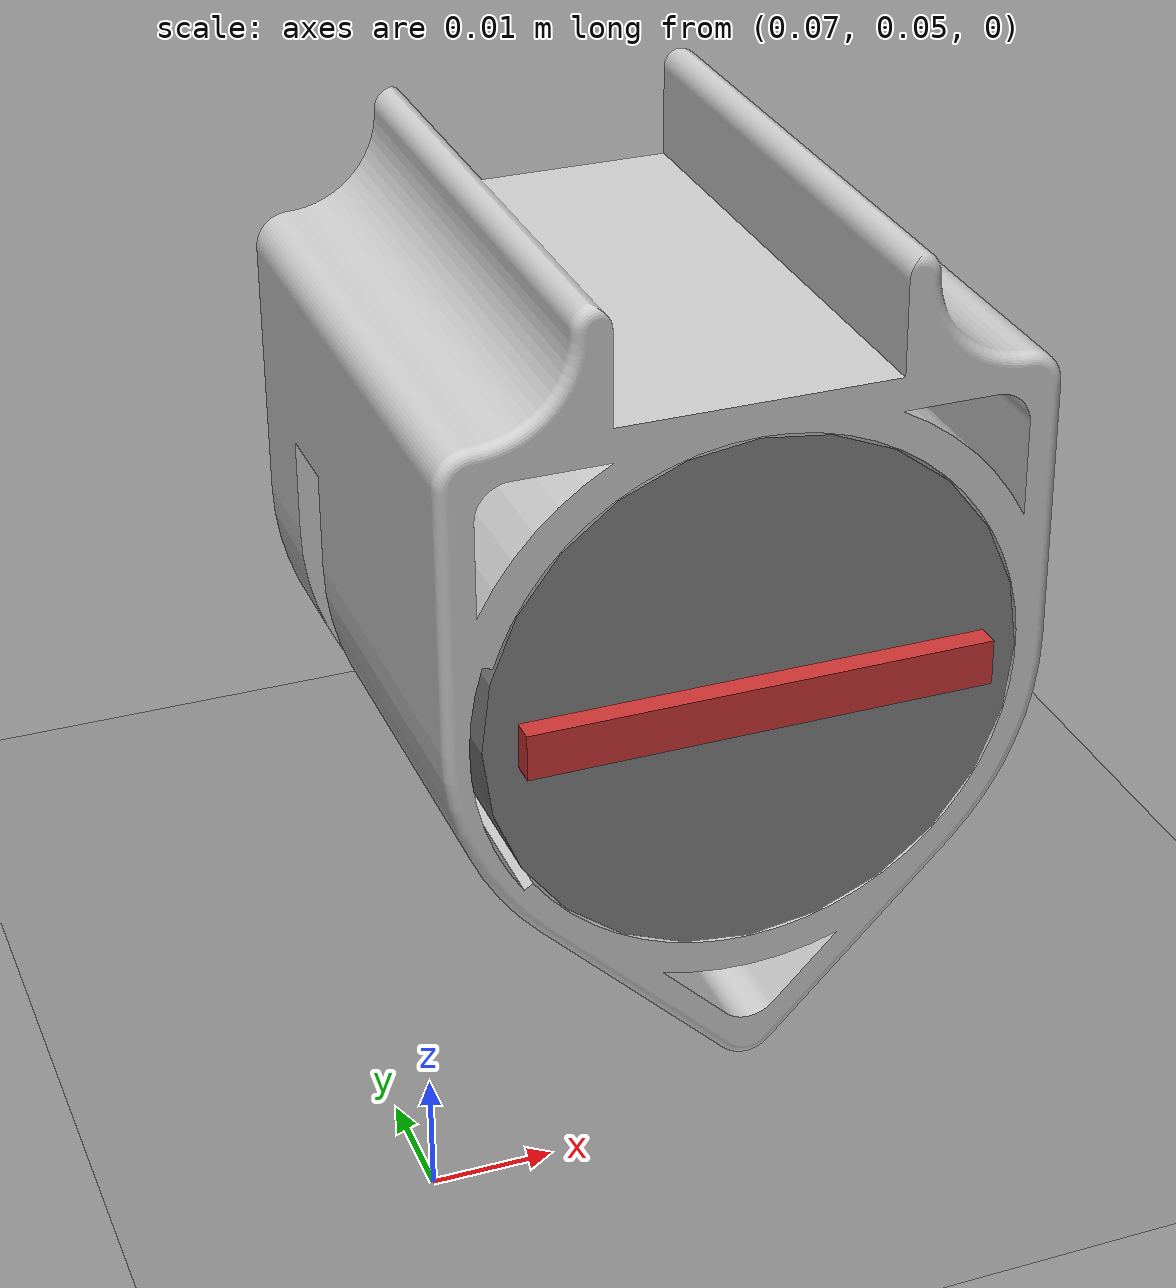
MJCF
<mujoco model="RS05">
    <option timestep="0.001">
        <flag gravity="enable"/>
    </option>
    <compiler angle="radian" meshdir="mesh"/>
    <default>
    </default>
    <asset>
        <texture name="tex_checker" type="2d" builtin="checker" rgb1="0.8 0.8 0.8" rgb2="0.3 0.3 0.3" width="512" height="512"/>
        <material name="mat_checker" texture="tex_checker" texrepeat="50 50" reflectance="0.1"/>
        <mesh name="RS05Cover" file="RS05Cover.stl" scale="0.001 0.001 0.001"/>
    </asset>
    <worldbody>
        <!-- 1:floor 2:cover 4:floor -->
        <geom name="floor" type="plane" pos="0 0 -0.001" xyaxes="1 0 0 0 1 0" size="5 5 0.001" material="mat_checker" contype="1"/>

        <body name="RS05Cover" pos="0.1 0.1 0.035527">
            <geom type="mesh" mesh="RS05Cover" xyaxes="1 0 0 0 1 0" rgba="0.8 0.8 0.8 1" density="500" contype="2" conaffinity="1"/>
            <body name="RS05">
                <geom name="RS05" type="cylinder" size="0.023" fromto="0 0 0 0 -0.044 0" mass="0.191" contype="0" conaffinity="0"/>
                <joint name="RS05" type="hinge" axis="0 1 0" damping="0" frictionloss="0.05" armature="0.00761"/>
                <geom type="box" size="0.02 0.002 0.002" pos="0 -0.044 0" mass="0.0001" rgba="0.8 0.2 0.2 1" contype="0" conaffinity="0"/>
            </body>
        </body>
        <light name="top" pos="0 -0.3 3"/>
    </worldbody>
    <actuator>
        <velocity name="RS05" joint="RS05" ctrlrange="-50 50" kv="0.1"/>
    </actuator>
</mujoco>
